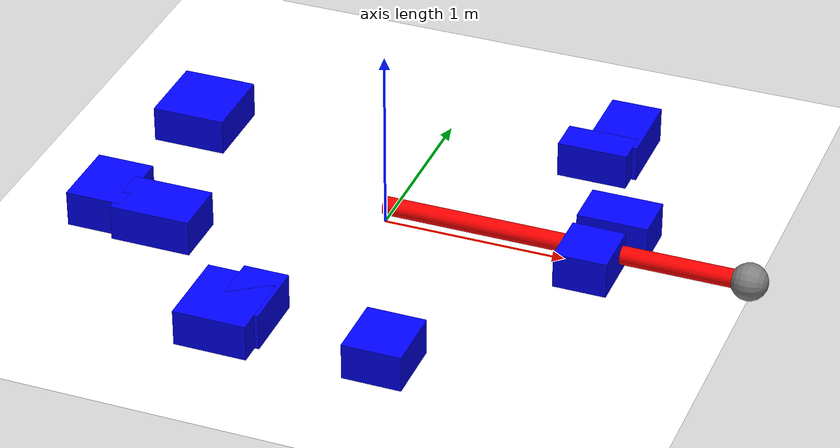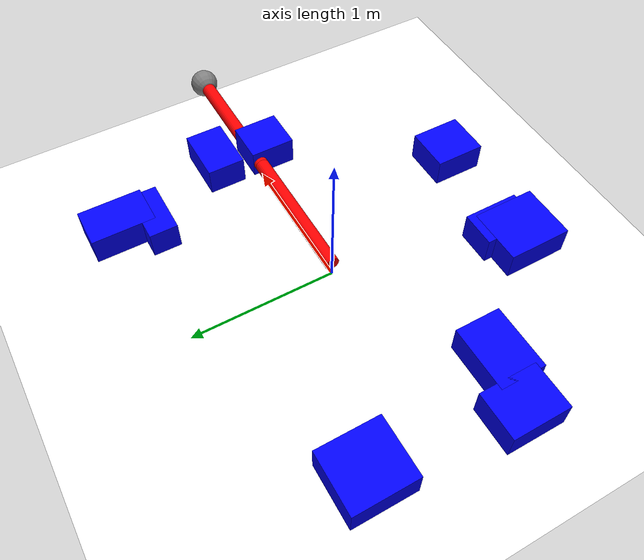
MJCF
<mujoco>
	<asset>
		<material name="red"   rgba="1 0 0 1"/>
		<material name="green" rgba="0 1 0 1"/>
		<material name="blue"  rgba="0 0 1 1"/>
		<material name="white" rgba="1 1 1 1"/>
		<material name="gray"  rgba=".5 .5 .5 1"/>
	</asset>

    <worldbody>
        <light diffuse=".5 .5 .5" pos="0 0 10" dir="0 0 -1"/>
        <geom type="plane" size="2 2 0.1" rgba="1 1 1 1"/>

        <body name="link 0" pos="0.5 0 0.1" euler="0 90 0">
            <joint name="joint 0" type="hinge" axis="-1 0 0" pos="0 0 -0.5"/>
            <geom name="geom link 0" type="cylinder" size="0.05 0.5" material="red"/>
            <body name="link 1" pos="0 0 1.0" euler="0 0 0">
                <joint name="joint 1" type="hinge" axis="-1 0 0" pos="0 0 -0.5"/>
                <geom name="geom link 1" type="cylinder" size="0.05 0.5" material="red"/>
                <site name="tip" size="0.1" pos="0 0 0.5"/>
            </body>
        </body>

        <body name="link 0 shade" pos="0.5 0 0.1" euler="0 90 0">
            <joint name="joint 0 shade" type="hinge" axis="-1 0 0" pos="0 0 -0.5"/>
            <geom name="geom link 0 shade" type="cylinder" size="0.05 0.5" material="green"/>
            <body name="link 1 shade" pos="0 0 1.0" euler="0 0 0">
                <joint name="joint 1 shade" type="hinge" axis="-1 0 0" pos="0 0 -0.5"/>
                <geom name="geom link 1 shade" type="cylinder" size="0.05 0.5" material="green"/>
            </body>
        </body>

        <body name="obstacle 0">
            <geom name="geom obstacle 0" type="box" size="0.19424149257733284 0.13139969321467654 0.1" pos="1.216294562138744 0.25948255469938 0.1" material="blue"/>
        </body>
        <body name="obstacle 1">
            <geom name="geom obstacle 1" type="box" size="0.22234641782136644 0.15792600764007167 0.1" pos="-1.0607541936228446 -0.5144505756406965 0.1" material="blue"/>
        </body>
        <body name="obstacle 2">
            <geom name="geom obstacle 2" type="box" size="0.20433238741441645 0.21778747983290256 0.1" pos="-1.2792747053227727 0.5253611144012202 0.1" material="blue"/>
        </body>
        <body name="obstacle 3">
            <geom name="geom obstacle 3" type="box" size="0.15908562361336712 0.20077803817302745 0.1" pos="-1.3978006950546744 -0.43128998441569966 0.1" material="blue"/>
        </body>
        <body name="obstacle 4">
            <geom name="geom obstacle 4" type="box" size="0.1446898632081366 0.15719518369387056 0.1" pos="1.170557367367779 -0.10378527148189098 0.1" material="blue"/>
        </body>
        <body name="obstacle 5">
            <geom name="geom obstacle 5" type="box" size="0.1590583899763615 0.17635991022710598 0.1" pos="0.47291908825508155 -1.2189465247028624 0.1" material="blue"/>
        </body>
        <body name="obstacle 6">
            <geom name="geom obstacle 6" type="box" size="0.14114535891247976 0.2190406019293031 0.1" pos="0.9751501760705845 1.0803259370228022 0.1" material="blue"/>
        </body>
        <body name="obstacle 7">
            <geom name="geom obstacle 7" type="box" size="0.12281729602645364 0.19580358313456578 0.1" pos="-0.2849898475426085 -1.120306725452612 0.1" material="blue"/>
        </body>
        <body name="obstacle 8">
            <geom name="geom obstacle 8" type="box" size="0.19767283250032522 0.22276444818224547 0.1" pos="-0.38367653339678265 -1.205966841561426 0.1" material="blue"/>
        </body>
        <body name="obstacle 9">
            <geom name="geom obstacle 9" type="box" size="0.1939757681798394 0.09714725502970684 0.1" pos="0.8954432778362293 0.8574745225532836 0.1" material="blue"/>
        </body>

    </worldbody>

    <contact>
        <exclude body1="link 0 shade" body2="link 1 shade"/>
        <exclude body1="link 0 shade" body2="link 0"/>
        <exclude body1="link 0 shade" body2="link 1"/>
        <exclude body1="link 1 shade" body2="link 0"/>
        <exclude body1="link 1 shade" body2="link 1"/>
        <exclude body1="link 0 shade" body2="obstacle 0"/>
        <exclude body1="link 0 shade" body2="obstacle 1"/>
        <exclude body1="link 0 shade" body2="obstacle 2"/>
        <exclude body1="link 0 shade" body2="obstacle 3"/>
        <exclude body1="link 0 shade" body2="obstacle 4"/>
        <exclude body1="link 0 shade" body2="obstacle 5"/>
        <exclude body1="link 0 shade" body2="obstacle 6"/>
        <exclude body1="link 0 shade" body2="obstacle 7"/>
        <exclude body1="link 0 shade" body2="obstacle 8"/>
        <exclude body1="link 0 shade" body2="obstacle 9"/>
        <exclude body1="link 1 shade" body2="obstacle 0"/>
        <exclude body1="link 1 shade" body2="obstacle 1"/>
        <exclude body1="link 1 shade" body2="obstacle 2"/>
        <exclude body1="link 1 shade" body2="obstacle 3"/>
        <exclude body1="link 1 shade" body2="obstacle 4"/>
        <exclude body1="link 1 shade" body2="obstacle 5"/>
        <exclude body1="link 1 shade" body2="obstacle 6"/>
        <exclude body1="link 1 shade" body2="obstacle 7"/>
        <exclude body1="link 1 shade" body2="obstacle 8"/>
        <exclude body1="link 1 shade" body2="obstacle 9"/>
    </contact>

    <sensor>
      <framepos objtype="site" objname="tip"/>
    </sensor>
</mujoco>
